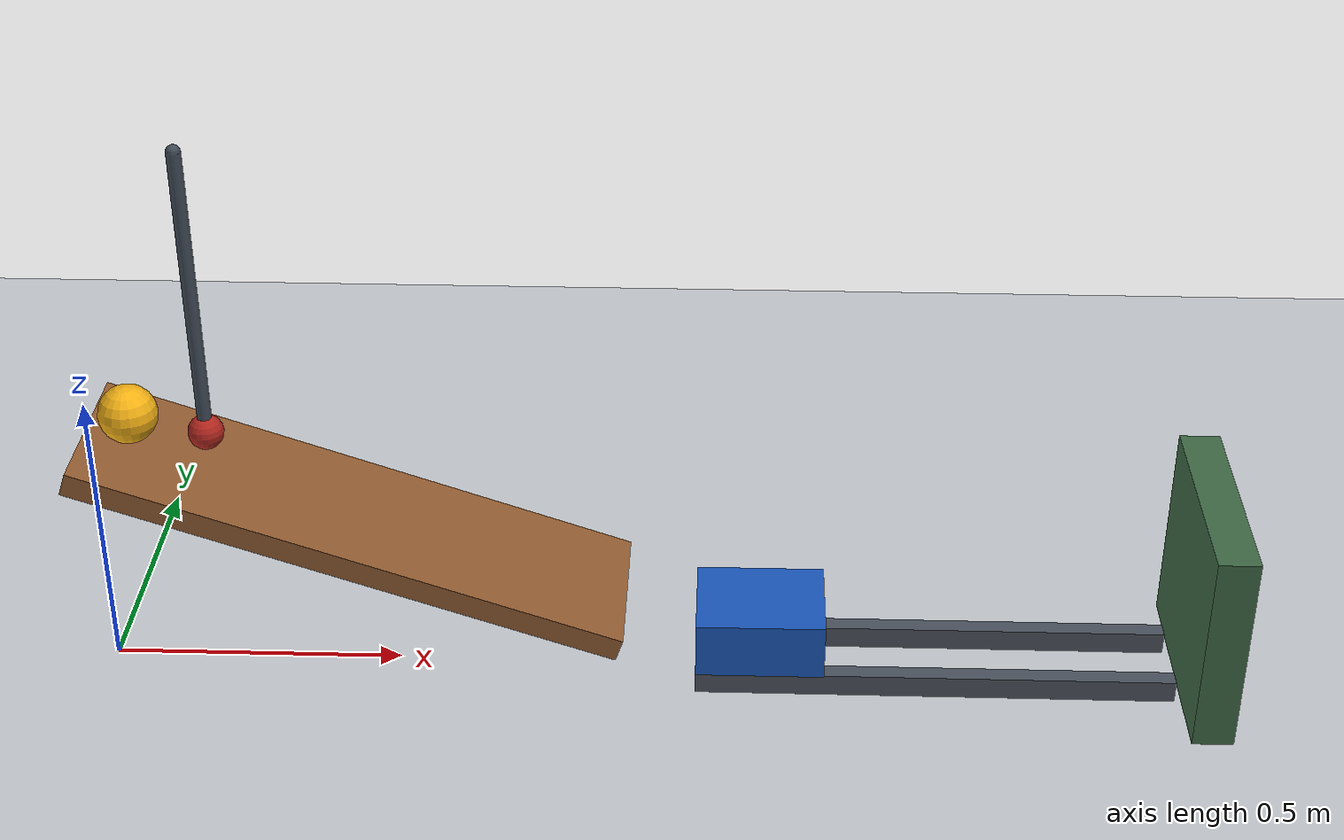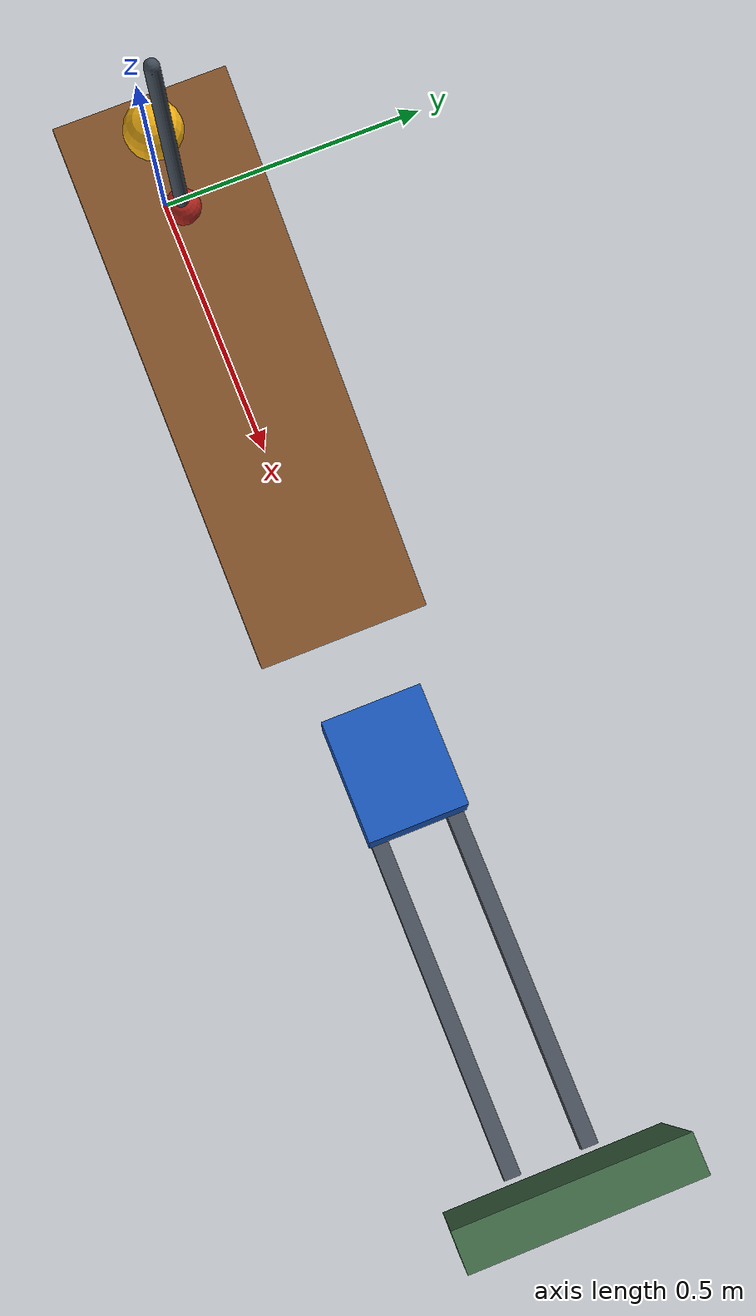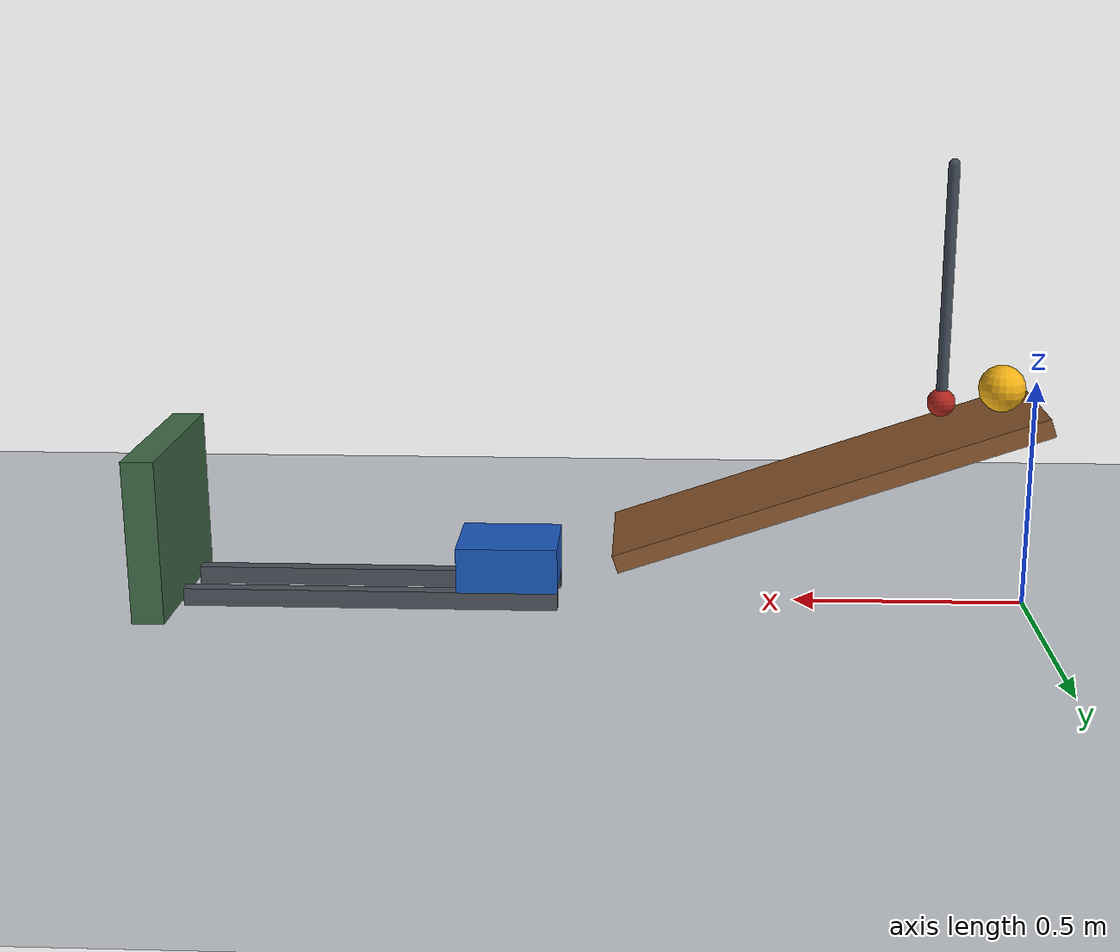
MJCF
<mujoco model="pendulum_ball_ramp_cart">
  <compiler angle="degree" autolimits="true"/>
  <option timestep="0.002" gravity="0 0 -9.81" integrator="implicitfast" cone="elliptic" iterations="80"/>
  <size njmax="300" nconmax="100"/>

  <!-- Nominal restitution 0.05 is approximated by the linear-contact damping ratio 0.690106. -->
  <!-- Sliding friction is 0.68 throughout. Small rolling resistance on the receiving surfaces lets the ball settle. -->

  <visual>
    <headlight ambient="0.4 0.4 0.4" diffuse="0.7 0.7 0.7" specular="0.2 0.2 0.2"/>
    <map znear="0.01"/>
  </visual>

  <worldbody>
    <light name="main_light" pos="0.8 -2 3" dir="0 0 -1"/>
    <camera name="overview" pos="1 -3.8 1.8" xyaxes="1 0 0 0 0.30 0.954"/>

    <geom name="floor" type="plane" size="4 3 0.1" friction="0.68 0.005 0.002" condim="6" priority="1" solref="0.008 0.690106" solimp="0.95 0.95 0.001" rgba="0.78 0.80 0.82 1"/>

    <!-- The 0.95 m top surface descends 19 degrees; its low endpoint is (0.898243, 0, 0.15). -->
    <body name="ramp1" pos="0.442609960 0 0.285734502" euler="0 19 0">
      <geom name="ramp1_surface" type="box" size="0.475 0.15 0.02" friction="0.68 0.005 0.0001" condim="3" solref="0.008 0.690106" solimp="0.95 0.95 0.001" rgba="0.57 0.36 0.19 1"/>
    </body>

    <!-- A 0.55 m rigid pendulum, measured from hinge to the lowest tip, with total mass 0.40 kg. -->
    <!-- The negative initial hinge angle places it left of vertical; gravity swings it toward +x. -->
    <body name="pendulum1" pos="0.20 0 0.975">
      <joint name="pendulum1_hinge" type="hinge" axis="0 -1 0" damping="0.04"/>
      <geom name="pendulum1_rod" type="capsule" fromto="0 0 -0.015 0 0 -0.50" size="0.012" mass="0.10" friction="0.68 0.005 0.0001" condim="3" solref="0.008 0.690106" solimp="0.95 0.95 0.001" rgba="0.25 0.29 0.34 1"/>
      <geom name="pendulum1_tip" type="sphere" pos="0 0 -0.52" size="0.03" mass="0.30" friction="0.68 0.005 0.0001" condim="3" solref="0.008 0.690106" solimp="0.95 0.95 0.001" rgba="0.70 0.15 0.12 1"/>
    </body>

    <!-- Ball starts 0.06 m down the ramp, at rest and tangent to its top surface. -->
    <body name="ball1" pos="0.073009522 0 0.487031586">
      <freejoint name="ball1_free"/>
      <geom name="ball1_sphere" type="sphere" size="0.05" mass="0.20" friction="0.68 0.005 0.0001" condim="3" solref="0.008 0.690106" solimp="0.95 0.95 0.001" rgba="0.96 0.70 0.08 1"/>
    </body>

    <!-- The cart's initial front face is 0.12 m beyond the ramp's low endpoint. -->
    <!-- The slide joint supports the cart vertically; rails sit 1 mm beneath it. -->
    <body name="cart1" pos="1.128242647 0 0.09">
      <joint name="cart1_slide" type="slide" axis="1 0 0" damping="0.20" limited="true" range="0 0.45" solreflimit="0.008 1" solimplimit="0.95 0.95 0.001"/>
      <geom name="cart1_chassis" type="box" size="0.11 0.09 0.05" mass="0.50" friction="0.68 0.005 0.002" condim="6" priority="1" solref="0.008 0.690106" solimp="0.95 0.95 0.001" rgba="0.10 0.35 0.75 1"/>
    </body>

    <body name="cart_track" pos="1.428242647 0 0">
      <geom name="cart_track_left_rail" type="box" pos="0 0.07 0.0195" size="0.41 0.015 0.0195" friction="0.68 0.005 0.002" condim="6" priority="1" solref="0.008 0.690106" solimp="0.95 0.95 0.001" rgba="0.30 0.33 0.37 1"/>
      <geom name="cart_track_right_rail" type="box" pos="0 -0.07 0.0195" size="0.41 0.015 0.0195" friction="0.68 0.005 0.002" condim="6" priority="1" solref="0.008 0.690106" solimp="0.95 0.95 0.001" rgba="0.30 0.33 0.37 1"/>
    </body>

    <!-- A passive receiving stop confines the ball after its encounter with the cart. -->
    <body name="receiving_stop" pos="1.885 0 0.18">
      <geom name="receiving_stop_wall" type="box" size="0.035 0.20 0.18" friction="0.68 0.005 0.002" condim="6" priority="1" solref="0.008 0.690106" solimp="0.95 0.95 0.001" rgba="0.25 0.42 0.28 1"/>
    </body>
  </worldbody>

  <!-- Keyframe hinge coordinates are radians, despite compiler angle="degree". All velocities are zero. -->
  <keyframe>
    <key name="start" qpos="-0.959931089 0.073009522 0 0.487031586 1 0 0 0 0" qvel="0 0 0 0 0 0 0 0"/>
  </keyframe>
</mujoco>
